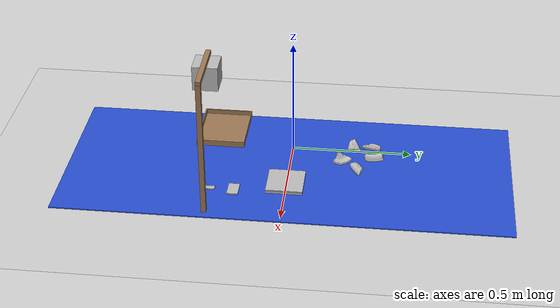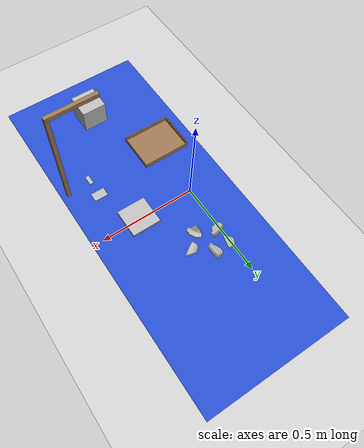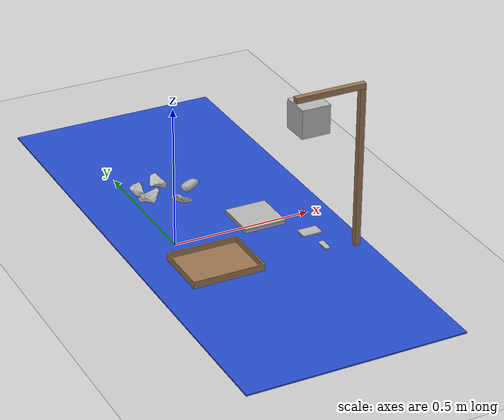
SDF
<sdf version='1.6'>
  <world name='default'>
    <light name='sun' type='directional'>
      <cast_shadows>0</cast_shadows>
      <pose frame=''>0 0 10 0 -0 0</pose>
      <diffuse>0.8 0.8 0.8 1</diffuse>
      <specular>0.1 0.1 0.1 1</specular>
      <attenuation>
        <range>1000</range>
        <constant>0.9</constant>
        <linear>0.01</linear>
        <quadratic>0.001</quadratic>
      </attenuation>
      <direction>-0.5 0.5 -1</direction>
    </light>
    <include>
      <uri>model://ground_plane</uri>
    </include>
    <gravity>0 0 -9.8</gravity>
    <magnetic_field>6e-06 2.3e-05 -4.2e-05</magnetic_field>
    <atmosphere type='adiabatic'/>
    <physics name='default_physics' default='0' type='ode'>
      <max_step_size>0.001</max_step_size>
      <real_time_factor>1</real_time_factor>
      <real_time_update_rate>1000</real_time_update_rate>
    </physics>
    <scene>
      <ambient>0.4 0.4 0.4 1</ambient>
      <background>0.7 0.7 0.7 1</background>
      <shadows>0</shadows>
    </scene>
    <spherical_coordinates>
      <surface_model>EARTH_WGS84</surface_model>
      <latitude_deg>0</latitude_deg>
      <longitude_deg>0</longitude_deg>
      <elevation>0</elevation>
      <heading_deg>0</heading_deg>
    </spherical_coordinates>
    <include>
      <uri>model://sherdmat</uri>
      <name>sherdmat</name>
      <pose frame=''>0.18 0 0.02 0 0 0</pose>
    </include>
    <include>
      <uri>model://scale</uri>
      <name>scale</name>
      <pose frame=''>0.3 0 0.025 0 0 0</pose>
    </include>
    <include>
      <uri>model://overhead_camera</uri>
      <name>overhead_camera</name>
      <pose frame=''>0.52 -0.3 0 0 0 1.5708</pose>
    </include>
    <include>
      <uri>model://color_board</uri>
      <name>color_board</name>
      <pose frame=''>0.4 -0.2 0.05 0 0 0</pose>
    </include>
    <include>
      <uri>model://scale_bar</uri>
      <name>scale_bar</name>
      <pose frame=''>0.4 -0.3 0.05 0 0 0</pose>
    </include>
    <include>
      <uri>model://discard_box</uri>
      <name>discard_box</name>
      <pose frame=''>0.0 -0.3 0.05 0 0 0</pose>
    </include>
    <include>
      <uri>model://sherd_a</uri>
      <name>sherd1</name>
      <pose frame=''>0.123 0.22 0.04 1.335 0.292 0.217</pose>
    </include>
    <include>
      <uri>model://sherd_b</uri>
      <name>sherd2</name>
      <pose frame=''>0.03 0.266 0.04 -0.312 -0.005 -2.851</pose>
    </include>
    <include>
      <uri>model://sherd_b</uri>
      <name>sherd3</name>
      <pose frame=''>0.1019 0.35 0.04 -0.28 -0.004 1.631</pose>
    </include>
    <include>
      <uri>model://sherd_c</uri>
      <name>sherd4</name>
      <pose frame=''>0.014 0.341 0.04 1.951 0.543 1.712</pose>
    </include>
    <include>
      <uri>model://sherd_c</uri>
      <name>sherd5</name>
      <pose frame=''>0.186 0.287 0.04 -1.02 -0.516 -3.038</pose>
    </include>
    <gui fullscreen='0'>
      <camera name='user_camera'>
        <pose frame=''>1.1573 -0.271554 1.7148 0 1.01164 3.02819</pose>
        <view_controller>orbit</view_controller>
        <projection_type>perspective</projection_type>
      </camera>
    </gui>
  </world>
</sdf>

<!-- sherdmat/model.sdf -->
<sdf version="1.5">
  <model name='sherdmat'>
    <pose frame=''>0 0 0 0 0 0</pose>
    <static>true</static>
    <link name='mat_link'>
      <pose frame=''>0 0 0.0025 0 0 0</pose>
      <inertial>
        <mass>5</mass>
        <inertia>
          <ixx>5</ixx>
          <ixy>0</ixy>
          <ixz>0</ixz>
          <iyy>5</iyy>
          <iyz>0</iyz>
          <izz>5</izz>
        </inertia>
      </inertial>
      <collision name='collision'>
        <geometry>
          <box>
            <size>0.76 1.83 0.005</size>
          </box>
        </geometry>
        <max_contacts>10</max_contacts>
        <surface>
          <contact>
            <ode/>
          </contact>
          <bounce/>
          <friction>
            <torsional>
              <coefficient>1</coefficient> <!-- added to try to prevent objects from sliding on mat. May not be necessary -->
            </torsional>
            <ode>
              <mu>1.0</mu>
              <mu2>1.0</mu2>
              <fdir1>1 0 0</fdir1> <!-- so objects do not slide all over mat -->
            </ode>
          </friction>
        </surface>
      </collision>
      <visual name='visual'>
        <material>
          <script>
            <uri>file://media/materials/scripts/gazebo.material</uri>
            <name>Gazebo/Blue</name>
          </script>
        </material>
        <geometry>
          <box>
            <size>0.76 1.83 0.005</size>
          </box>
        </geometry>
      </visual>
      <self_collide>0</self_collide>
      <gravity>1</gravity>
    </link>
  </model>
</sdf>

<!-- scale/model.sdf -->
<sdf version="1.5">
  <model name="scale">
    <static>false</static>
    <link name="scale_base_link">
      <frame name="scale_base_frame"/>
      <pose>0 0 0.005 0 0 0</pose>
      <inertial> <!-- solid cuboid -->
        <mass>1.0</mass>
        <inertia>
          <ixx>1.88333e-3</ixx>
          <ixy>0.0</ixy>
          <ixz>0.0</ixz>
          <iyy>1.88333e-3</iyy>
          <iyz>0.0</iyz>
          <izz>3.75e-3</izz>
        </inertia>
      </inertial>
      <visual name="scale_base_visual">
        <geometry>
          <box>
            <size>0.15 0.15 0.01</size>
          </box>
        </geometry>
      </visual>
      <collision name="scale_base_collision">
        <max_contacts>20</max_contacts>
        <geometry>
          <box>
            <size>0.15 0.15 0.01</size>
          </box>
        </geometry>
      </collision>
    </link>

    <link name="scale_cover_link">
      <frame name="scale_cover_frame"/>
      <pose>0 0 0.0125 0 0 0</pose>
      <inertial>
        <mass>0.1</mass>
        <inertia>
          <ixx>1.88333e-4</ixx>
          <ixy>0.0</ixy>
          <ixz>0.0</ixz>
          <iyy>1.88333e-4</iyy>
          <iyz>0.0</iyz>
          <izz>3.75e-4</izz>
        </inertia>
      </inertial>
      <visual name="visual_scale_cover">
        <geometry>
          <box>
            <size>0.15 0.15 0.005</size>
          </box>
        </geometry>
      </visual>
      <collision name="scale_cover_link_collision">
        <max_contacts>20</max_contacts>
        <geometry>
          <box>
            <size>0.15 0.15 0.005</size>
          </box>
        </geometry>
        <surface>
          <friction>
            <torsional>
              <coefficient>1</coefficient> <!--added to try to prevent sherd model from sliding.  May not be necessary -->
            </torsional>
            <ode>
              <mu>1.0</mu>
              <mu2>1.0</mu2>
              <fdir1>1 0 0</fdir1> <!-- important to keep sherd model from sliding -->
            </ode>
          </friction>
        </surface>
      </collision>
      <sensor name='scale_contact_sensor' type='contact'>
        <contact>
          <collision>scale_cover_link_collision</collision>
        </contact>
        <pose>0 0 0.015 0 0 0</pose>
        <update_rate>10</update_rate>
        <plugin name="scale_bumper" filename="libgazebo_ros_bumper.so">
          <bumperTopicName>scale_contact_sensor</bumperTopicName>
          <frameName>scale_cover_frame</frameName>
        </plugin>
      </sensor>
    </link>

    <joint name="scale_joint" type="fixed">
      <parent>scale_base_link</parent>
      <child>scale_cover_link</child>
      <pose frame="scale_base_frame">0 0 0.015 0 0 0</pose>
      <sensor name="scale_ft_sensor" type="force_torque">
        <update_rate>10</update_rate>
      </sensor>
    </joint>

    <plugin name="ft_sensor" filename="libgazebo_ros_ft_sensor.so">
       <updateRate>10</updateRate>
       <topicName>scale_ft_sensor</topicName>
       <jointName>scale_joint</jointName>
    </plugin>

  </model>
</sdf>

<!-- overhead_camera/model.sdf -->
<sdf version="1.5">
  <model name="overhead_camera">
    <static>true</static>
    <link name="vertical">
      <pose frame=''>0 0 0.3 0 0 0</pose>
      <inertial>
        <mass>5</mass>
        <inertia>
          <ixx>5</ixx>
          <ixy>0</ixy>
          <ixz>0</ixz>
          <iyy>5</iyy>
          <iyz>0</iyz>
          <izz>5</izz>
        </inertia>
      </inertial>

      <collision name="collision">
        <geometry>
          <box>
            <size>0.02 0.02 0.6</size>
          </box>
        </geometry>
        <surface>
          <contact>
            <poissons_ratio>0.15</poissons_ratio>
            <elastic_modulus>1</elastic_modulus>
            <ode>
              <kp>100000</kp>
              <kd>100</kd>
              <max_vel>1.0</max_vel>
              <min_depth>0.001</min_depth>
            </ode>
          </contact>
          <friction>
            <torsional>
              <coefficient>1.0</coefficient>
              <use_patch_radius>0</use_patch_radius>
              <surface_radius>0.01</surface_radius>
            </torsional>
          </friction>
        </surface>
      </collision>

      <visual name="visual">
        <geometry>
          <box>
            <size>0.02 0.02 0.6</size>
          </box>
        </geometry>
        <material>
          <ambient>0.4 0.26 0.12 1</ambient>
          <diffuse>0.6 0.46 0.32 1</diffuse>
        </material>
      </visual>
    </link>

    <link name="horizontal">
      <pose>0.0 0.115 0.605 0.0 1.5707 1.5707</pose>
        <inertial>
        <mass>5</mass>
        <inertia>
          <ixx>5</ixx>
          <ixy>0</ixy>
          <ixz>0</ixz>
          <iyy>5</iyy>
          <iyz>0</iyz>
          <izz>5</izz>
        </inertia>
      </inertial>

      <collision name="collision">
        <geometry>
          <box>
            <size>0.02 0.02 0.25</size>
          </box>
        </geometry>
        <surface>
          <contact>
            <poissons_ratio>0.15</poissons_ratio>
            <elastic_modulus>1</elastic_modulus>
            <ode>
              <kp>100000</kp>
              <kd>100</kd>
              <max_vel>1.0</max_vel>
              <min_depth>0.001</min_depth>
            </ode>
          </contact>
          <friction>
            <torsional>
              <coefficient>1.0</coefficient>
              <use_patch_radius>0</use_patch_radius>
              <surface_radius>0.01</surface_radius>
            </torsional>
          </friction>
        </surface>
      </collision>

      <visual name="visual">
        <geometry>
          <box>
            <size>0.02 0.02 0.25</size>
          </box>
        </geometry>
        <material>
          <ambient>0.4 0.26 0.12 1</ambient>
          <diffuse>0.6 0.46 0.32 1</diffuse>
        </material>
      </visual>
    </link>

    <include>
      <uri>model://gazebo_camera</uri>
      <link name="gazebo_camera"/>
      <pose>0 0.19 0.54 0 1.5707 1.5707</pose>
    </include>

  </model>
</sdf>

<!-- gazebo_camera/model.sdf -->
<sdf version="1.5">
  <model name="archival_camera">
    <pose>0 0 0.05 0 0 0</pose>
    <link name="archival_camera_link">
      <inertial>
        <mass>0.1</mass>
        <inertia>
          <ixx>0.000166667</ixx>
          <iyy>0.000166667</iyy>
          <izz>0.000166667</izz>
        </inertia>
      </inertial>
      <collision name="collision">
        <geometry>
          <box>
            <size>0.1 0.1 0.1</size>
          </box>
        </geometry>
      </collision>
      <visual name="visual">
        <geometry>
          <box>
            <size>0.1 0.1 0.1</size>
          </box>
        </geometry>
      </visual>
      <sensor name="camera" type="camera">
        <always_on>1</always_on>
        <update_rate>30</update_rate>
        <visualize>true</visualize>

        <camera>
          <horizontal_fov>1.047</horizontal_fov>
          <image>
            <width>3840</width>
            <height>2160</height>
          </image>
          <clip>
            <near>0.1</near>
            <far>100</far>
          </clip>
        </camera>

        <!-- plugin to echo gazebo topic messages on ROS topic -->
        <plugin name="camera_controller" filename="libgazebo_ros_camera.so">
          <alwaysOn>true</alwaysOn>
          <updateRate>10</updateRate>
          <cameraName>archival_camera</cameraName>
          <imageTopicName>image_raw</imageTopicName>
          <cameraInfoTopicName>camera_info</cameraInfoTopicName>
          <frameName>archival_camera_link</frameName>
          <hackBaseline>0.07</hackBaseline>
          <distortionK1>0.0</distortionK1>
          <distortionK2>0.0</distortionK2>
          <distortionK3>0.0</distortionK3>
          <distortionT1>0.0</distortionT1>
          <distortionT2>0.0</distortionT2>
        </plugin>

      </sensor>
    </link>
  </model>
</sdf>

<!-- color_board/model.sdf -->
<sdf version="1.5">
  <model name="color_board">
    <static>false</static>
    <link name="Board">
      <pose frame=''>0 0 0.0025 0 0 0</pose>
      <inertial>
        <mass>2</mass>
        <inertia>
          <ixx>5</ixx>
          <ixy>0</ixy>
          <ixz>0</ixz>
          <iyy>5</iyy>
          <iyz>0</iyz>
          <izz>5</izz>
        </inertia>
      </inertial>

      <collision name="Board">
        <geometry>
          <box>
            <size>0.07 0.045 0.005</size>
          </box>
        </geometry>
        <surface>
          <contact>
            <poissons_ratio>10</poissons_ratio>
            <elastic_modulus>8.0e+10</elastic_modulus>
            <ode>
              <kp>100000</kp>
              <kd>100</kd>
              <max_vel>100.0</max_vel>
              <min_depth>0.001</min_depth>
            </ode>
          </contact>
          <friction>
            <torsional>
              <coefficient>1.0</coefficient>
              <use_patch_radius>0</use_patch_radius>
              <surface_radius>0.01</surface_radius>
            </torsional>
          </friction>
        </surface>
      </collision>

      <visual name="Board">
        <geometry>
          <box>
            <size>0.07 0.045 0.005</size>
          </box>
        </geometry>
        <material>
          <script>
            <uri>model://color_board/materials/scripts</uri>
            <uri>model://color_board/materials/texture</uri>
            <name>ColorBoard/Image</name>
          </script>
        </material>
      </visual>
    </link>

  </model>
</sdf>

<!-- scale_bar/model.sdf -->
<sdf version="1.5">
  <model name="scale_bar">
    <static>false</static>
    <link name="Board">
      <pose frame=''>0 0 0.0025 0 0 0</pose>
      <inertial>
        <mass>2</mass>
        <inertia>
          <ixx>5</ixx>
          <ixy>0</ixy>
          <ixz>0</ixz>
          <iyy>5</iyy>
          <iyz>0</iyz>
          <izz>5</izz>
        </inertia>
      </inertial>

      <collision name="Board">
        <geometry>
          <box>
            <size>0.02 0.05 0.005</size>
          </box>
        </geometry>
        <surface>
          <contact>
            <poissons_ratio>10</poissons_ratio>
            <elastic_modulus>8.0e+10</elastic_modulus>
            <ode>
              <kp>100000</kp>
              <kd>100</kd>
              <max_vel>100.0</max_vel>
              <min_depth>0.001</min_depth>
            </ode>
          </contact>
          <friction>
            <torsional>
              <coefficient>1.0</coefficient>
              <use_patch_radius>0</use_patch_radius>
              <surface_radius>0.01</surface_radius>
            </torsional>
          </friction>
        </surface>
      </collision>

      <visual name="Board">
        <geometry>
          <box>
            <size>0.02 0.05 0.005</size>
          </box>
        </geometry>
        <material>
          <script>
            <uri>model://scale_bar/materials/scripts</uri>
            <uri>model://scale_bar/materials/texture</uri>
            <name>BlackWhite/Image</name>
          </script>
        </material>
      </visual>
    </link>

  </model>
</sdf>

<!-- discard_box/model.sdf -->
<sdf version="1.5">
  <model name="discard_box">
    <link name="link">
      <pose>0 0 0.031 0 0 0</pose>
      <inertial>
        <mass>5</mass>
        <inertia>
          <ixx>5</ixx>
          <ixy>0</ixy>
          <ixz>0</ixz>
          <iyy>5</iyy>
          <iyz>0</iyz>
          <izz>5</izz>
        </inertia>
      </inertial>
      <collision name="collision">
        <geometry>
		  <mesh>
		    <uri>model://discard_box/meshes/discard_box.dae</uri>
		  </mesh>
        </geometry>
      </collision>
      <visual name="visual">
        <geometry>
          <mesh>
		    <uri>model://discard_box/meshes/discard_box.dae</uri>
		  </mesh>
        </geometry>
        <material>
          <ambient>0.4 0.26 0.12 1</ambient>
          <diffuse>0.6 0.46 0.32 1</diffuse>
        </material>
      </visual>
    </link>
  </model>
</sdf>

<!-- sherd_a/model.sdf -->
<sdf version="1.5">

  <model name='sherd_a'>
    <pose frame=''>0 0 0 0 0 0</pose>
    <static>false</static> <!-- mass is ignored for static models -->
    <link name='sherd_a_link'>
      <pose frame=''>0 0 0.005 0 0 0</pose>
      <inertial>
        <mass>0.162</mass>
        <inertia>
          <ixx>5.564637e-05</ixx>
          <ixy>4.5782365e-06</ixy>
          <ixz>-8.304574e-06</ixz>
          <iyy>7.6009186e-05</iyy>
          <iyz>2.6780175000000004e-06</iyz>
          <izz>2.9795393e-05</izz>
        </inertia>
      </inertial>
      <collision name='collision'> <!-- .dae mesh for collision falls through the blue mat; .stl avoids this -->
        <geometry>
          <mesh>
            <uri>model://sherd_a/meshes/sherd_a.stl</uri>
            <scale>1 1 1</scale>
          </mesh>
        </geometry>
        <surface>
          <contact>
            <poissons_ratio>0.15</poissons_ratio>
            <elastic_modulus>8e+10</elastic_modulus>
            <ode>
              <kp>100000</kp>
              <kd>100</kd>
              <max_vel>100</max_vel>
              <min_depth>0.001</min_depth>
            </ode>
          </contact>
          <friction>
            <torsional>
              <coefficient>1</coefficient>
            </torsional>
            <ode>
              <mu>1.0</mu>
              <mu2>1.0</mu2>
              <fdir1>1 0 0</fdir1> <!-- specify in x dir to prevent slipping on mat AND in gripper. Gazebo automatically picks fdir2 as vector normal to applied force on surface -->
            </ode>
          </friction>
          <bounce/>
        </surface>
        <max_contacts>10</max_contacts>
      </collision>
      <visual name='visual'>
        <geometry>
          <mesh>
            <uri>model://sherd_a/meshes/sherd_a.stl</uri>
            <scale>1 1 1</scale>
          </mesh>
        </geometry>
        <material>
          <script>
            <uri>model://sherd_a/materials/scripts</uri>
            <uri>model://sherd_a/materials/textures</uri>
            <name>sherdMat/a</name>
          </script>
        </material>
      </visual>
      <self_collide>0</self_collide>
      <kinematic>0</kinematic>
      <gravity>1</gravity>
    </link>
  </model>
</sdf>

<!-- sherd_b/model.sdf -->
<sdf version="1.5">

  <model name='sherd_b'>
    <pose frame=''>0 0 0 0 0 0</pose>
    <static>false</static> <!-- mass is ignored for static models -->
    <link name='sherd_b_link'>
      <pose frame=''>0 0 0.005 0 0 0</pose>
      <inertial>
        <mass>0.266</mass>
        <inertia>
          <ixx>4.062088e-05</ixx>
          <ixy>-7.599255999999999e-06</ixy>
          <ixz>-1.1300795e-06</ixz>
          <iyy>0.00012027606949999999</iyy>
          <iyz>-3.0143439999999996e-06</iyz>
          <izz>0.00013008792099999998</izz>
        </inertia>
      </inertial>
      <collision name='collision'> <!-- .dae mesh for collision falls through the blue mat; .stl avoids this -->
        <geometry>
          <mesh>
            <uri>model://sherd_b/meshes/sherd_b.stl</uri>
            <scale>1 1 1</scale>
          </mesh>
        </geometry>
        <surface>
          <contact>
            <poissons_ratio>0.15</poissons_ratio>
            <elastic_modulus>8e+10</elastic_modulus>
            <ode>
              <kp>100000</kp>
              <kd>100</kd>
              <max_vel>100</max_vel>
              <min_depth>0.001</min_depth>
            </ode>
          </contact>
          <friction>
            <torsional>
              <coefficient>1</coefficient>
            </torsional>
            <ode>
              <mu>1.0</mu>
              <mu2>1.0</mu2>
              <fdir1>1 0 0</fdir1> <!-- specify in x dir to prevent slipping on mat AND in gripper. Gazebo automatically picks fdir2 as vector normal to applied force on surface -->
            </ode>
          </friction>
          <bounce/>
        </surface>
        <max_contacts>10</max_contacts>
      </collision>
      <visual name='visual'>
        <geometry>
          <mesh>
            <uri>model://sherd_b/meshes/sherd_b.stl</uri>
            <scale>1 1 1</scale>
          </mesh>
        </geometry>
        <material>
          <script>
            <uri>model://sherd_b/materials/scripts</uri>
            <uri>model://sherd_b/materials/textures</uri>
            <name>sherdMat/b</name>
          </script>
        </material>
      </visual>
      <self_collide>0</self_collide>
      <kinematic>0</kinematic>
      <gravity>1</gravity>
    </link>
  </model>
</sdf>

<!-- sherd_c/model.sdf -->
<sdf version="1.5">
  <model name='sherd_c'>

    <pose frame=''>0 0 0 0 0 0</pose>
    <static>false</static> <!-- mass is ignored for static models -->
    <link name='sherd_c_link'>
      <pose frame=''>0 0 0.005 0 0 0</pose>
      <inertial>
        <mass>0.05</mass>
        <inertia>
          <!-- inertials for lengths scaled 2x in x,y,z -->
          <ixx>5.1450100000000006e-06</ixx>
          <ixy>-3.1585640000000004e-06</ixy>
          <ixz>9.0582e-08</ixz>
          <iyy>7.944352e-06</iyy>
          <iyz>-7.702099999999999e-07</iyz>
          <izz>9.123182e-06</izz>
          <!-- inertials for original size: -->
        </inertia>
      </inertial>
      <collision name='collision'> <!-- .dae mesh for collision falls through the blue mat; .stl avoids this -->
        <geometry>
          <mesh>
            <uri>model://sherd_c/meshes/sherd_c.stl</uri>
            <scale>2 2 2</scale>
          </mesh>
        </geometry>
        <surface>
          <contact>
            <poissons_ratio>0.15</poissons_ratio>
            <elastic_modulus>8e+10</elastic_modulus>
            <ode>
              <kp>100000</kp>
              <kd>100</kd>
              <max_vel>100</max_vel>
              <min_depth>0.001</min_depth>
            </ode>
          </contact>
          <friction>
            <torsional>
              <coefficient>1</coefficient>
            </torsional>
            <ode>
              <mu>1.0</mu>
              <mu2>1.0</mu2>
              <fdir1>1 0 0</fdir1> <!-- specify in x dir to prevent slipping on mat AND in gripper. Gazebo automatically picks fdir2 as vector normal to applied force on surface -->
            </ode>
          </friction>
          <bounce/>
        </surface>
        <max_contacts>10</max_contacts>
      </collision>
      <visual name='visual'>
        <geometry>
          <mesh>
            <uri>model://sherd_c/meshes/sherd_c.stl</uri>
            <scale>2 2 2</scale>
          </mesh>
        </geometry>
        <material>
          <script>
            <uri>model://sherd_c/materials/scripts</uri>
            <uri>model://sherd_c/materials/textures</uri>
            <name>sherdMat/c</name>
          </script>
        </material>
      </visual>
      <self_collide>0</self_collide>
      <kinematic>0</kinematic>
      <gravity>1</gravity>
    </link>
  </model>
</sdf>
